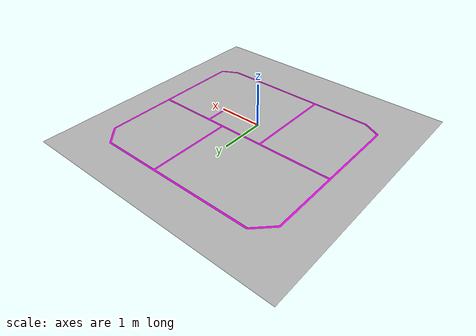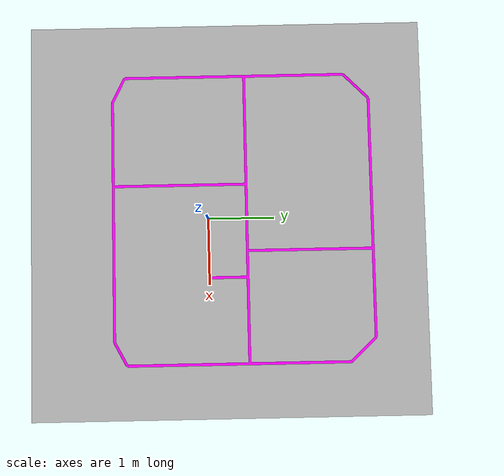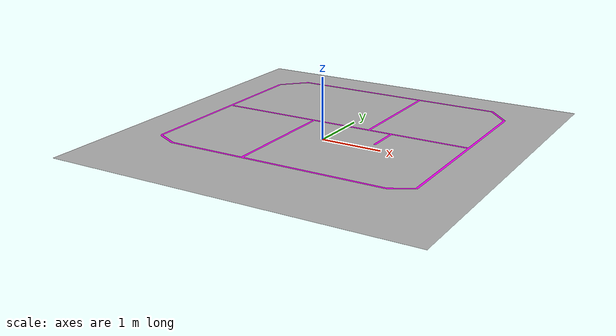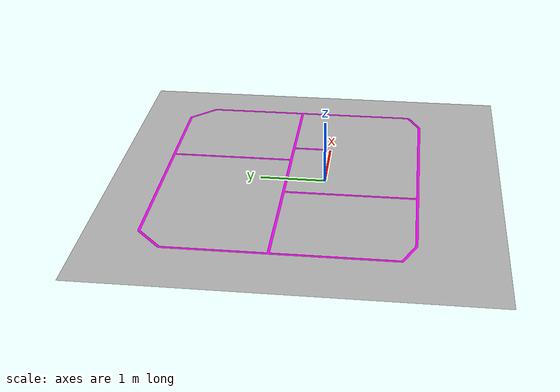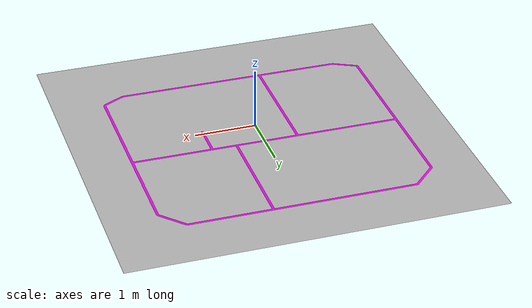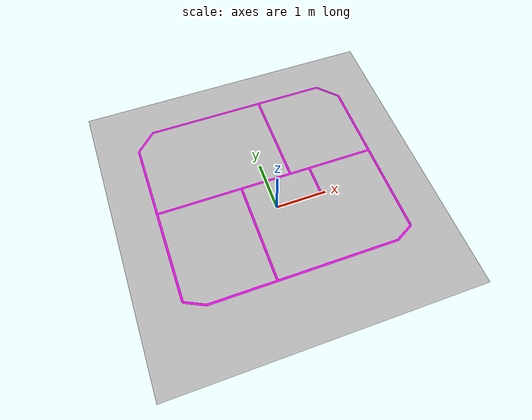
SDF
<?xml version="1.0"?>
<sdf version="1.7">
  <world name="flat_magenta_original2d_route_3d_preview_world">
    <scene>
      <ambient>0.85 0.85 0.85 1</ambient>
      <background>0.86 0.91 0.98 1</background>
      <shadows>0</shadows>
    </scene>
    <gui fullscreen="0">
      <camera name="user_camera">
        <pose>0 0.3 7.5 0 1.570796 -1.570796</pose>
        <view_controller>orbit</view_controller>
      </camera>
    </gui>
    <light name="sun" type="directional">
      <cast_shadows>0</cast_shadows>
      <pose>0 0 8 0 0 0</pose>
      <diffuse>1 1 1 1</diffuse>
      <specular>0.1 0.1 0.1 1</specular>
      <direction>0 0 -1</direction>
    </light>
    <model name="autonomous_map_3d_mirror_x_view">
      <static>1</static>
      <pose>0 0.3 0 0 0 3.141593</pose>
      <link name="map_link">
        <visual name="mirrored_map_visual">
          <geometry>
            <mesh>
              <uri>file:///home/quocbao/my_robot_vision_full_project/my_robot_vision/models/autonomous_map_3d_mirror_x/meshes/autonomous_map_3d_mirror_x.dae</uri>
            </mesh>
          </geometry>
        </visual>
      </link>
    </model>
    <model name="flat_magenta_original2d_route_overlay">
      <static>1</static>
      <pose>0 0 0 0 0 0</pose>
      <link name="route_overlay_link">
        <visual name="route_overlay_mesh_visual">
          <geometry>
            <mesh>
              <uri>file:///home/quocbao/my_robot_vision_full_project/my_robot_vision/route_drawing_lab/outputs/session_20260608_132843/preview_flat_magenta_original2d_3d/flat_magenta_original2d_route_overlay.dae</uri>
            </mesh>
          </geometry>
          <material>
            <ambient>1 0 1 1</ambient>
            <diffuse>1 0 1 1</diffuse>
            <emissive>0.8 0 0.8 1</emissive>
          </material>
        </visual>
      </link>
    </model>
  </world>
</sdf>
